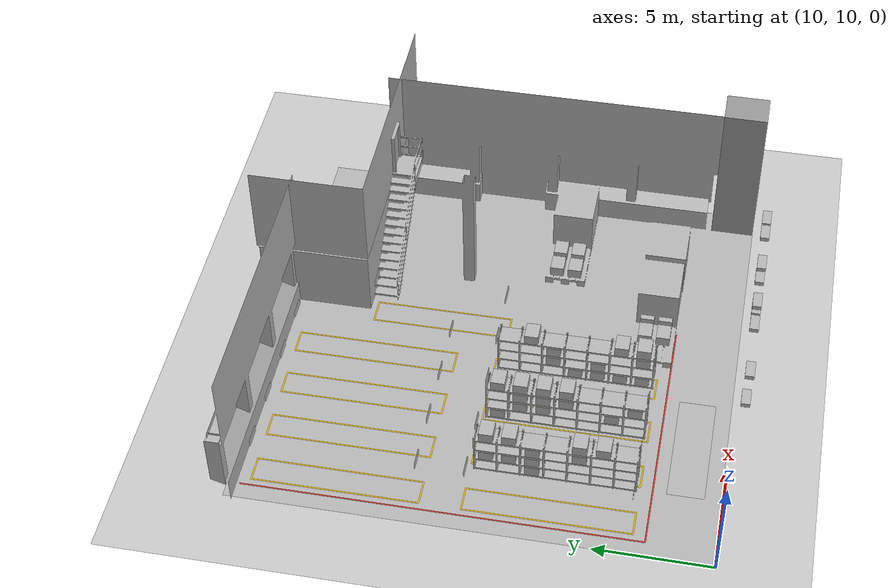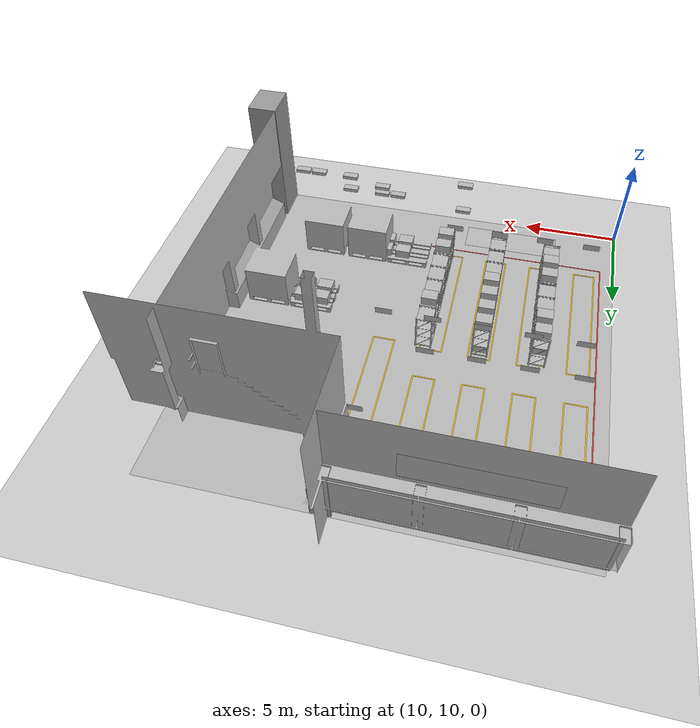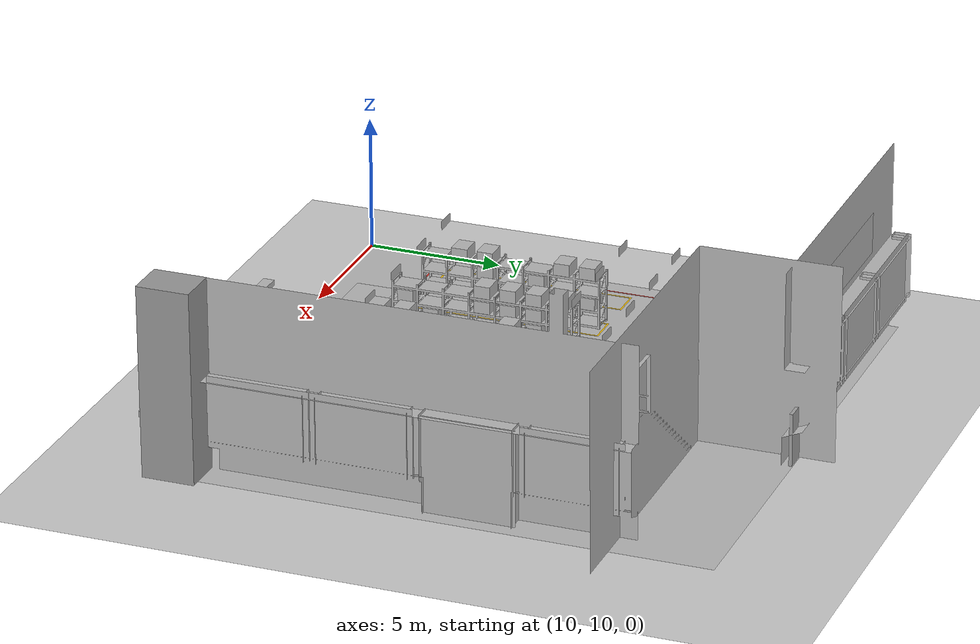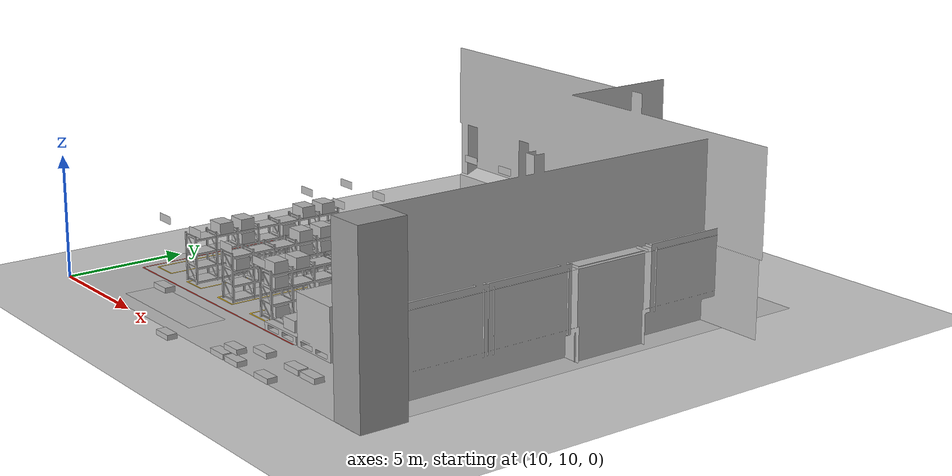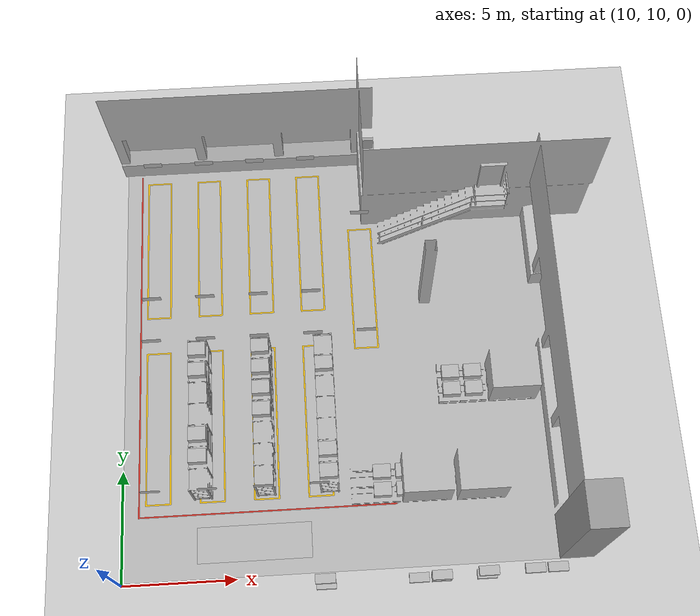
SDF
<sdf version="1.6">
 <world name="default">
  <model name="ground_plane">
   <static>1</static>
   <link name="link">
    <collision name="collision">
     <geometry><plane><normal>0 0 1</normal><size>100 100</size></plane></geometry>
     <surface><friction><ode><mu>100</mu><mu2>50</mu2></ode></friction></surface>
    </collision>
    <visual name="visual">
     <cast_shadows>0</cast_shadows>
     <geometry><plane><normal>0 0 1</normal><size>100 100</size></plane></geometry>
     <material>
      <script><uri>file://media/materials/scripts/gazebo.material</uri><name>Gazebo/Grey</name></script>
     </material>
    </visual>
   </link>
  </model>
  <model name="box_B_121">
   <pose>28.559 9.5573 1.552 0 0 1.5708</pose>
   <link name="link">
    <inertial>
     <mass>4.0</mass>
     <inertia><ixx>0.25417</ixx><iyy>0.06667</iyy><izz>0.29417</izz><ixy>0</ixy><ixz>0</ixz><iyz>0</iyz></inertia>
    </inertial>
    <collision name="collision">
     <geometry><box><size>0.4 0.85 0.2</size></box></geometry>
     <surface><friction><ode><mu>1.0</mu><mu2>1.0</mu2></ode></friction></surface>
    </collision>
    <visual name="visual">
     <cast_shadows>0</cast_shadows>
     <geometry><box><size>0.4 0.85 0.2</size></box></geometry>
     <material>
      <script>
       <uri>model://labeled_boxes/materials/scripts</uri>
       <uri>model://labeled_boxes/materials/textures</uri>
       <name>LabeledBox/B-121</name>
      </script>
     </material>
    </visual>
   </link>
  </model>
  <model name="box_B_122">
   <pose>27.605 9.5573 1.552 0 0 1.5708</pose>
   <link name="link">
    <inertial>
     <mass>4.0</mass>
     <inertia><ixx>0.25417</ixx><iyy>0.06667</iyy><izz>0.29417</izz><ixy>0</ixy><ixz>0</ixz><iyz>0</iyz></inertia>
    </inertial>
    <collision name="collision">
     <geometry><box><size>0.4 0.85 0.2</size></box></geometry>
     <surface><friction><ode><mu>1.0</mu><mu2>1.0</mu2></ode></friction></surface>
    </collision>
    <visual name="visual">
     <cast_shadows>0</cast_shadows>
     <geometry><box><size>0.4 0.85 0.2</size></box></geometry>
     <material>
      <script>
       <uri>model://labeled_boxes/materials/scripts</uri>
       <uri>model://labeled_boxes/materials/textures</uri>
       <name>LabeledBox/B-122</name>
      </script>
     </material>
    </visual>
   </link>
  </model>
  <model name="box_B_125">
   <pose>25.662 9.5573 0.652 0 0 1.5708</pose>
   <link name="link">
    <inertial>
     <mass>4.0</mass>
     <inertia><ixx>0.25417</ixx><iyy>0.06667</iyy><izz>0.29417</izz><ixy>0</ixy><ixz>0</ixz><iyz>0</iyz></inertia>
    </inertial>
    <collision name="collision">
     <geometry><box><size>0.4 0.85 0.2</size></box></geometry>
     <surface><friction><ode><mu>1.0</mu><mu2>1.0</mu2></ode></friction></surface>
    </collision>
    <visual name="visual">
     <cast_shadows>0</cast_shadows>
     <geometry><box><size>0.4 0.85 0.2</size></box></geometry>
     <material>
      <script>
       <uri>model://labeled_boxes/materials/scripts</uri>
       <uri>model://labeled_boxes/materials/textures</uri>
       <name>LabeledBox/B-125</name>
      </script>
     </material>
    </visual>
   </link>
  </model>
  <model name="box_B_126">
   <pose>25.662 9.5573 1.552 0 0 1.5708</pose>
   <link name="link">
    <inertial>
     <mass>4.0</mass>
     <inertia><ixx>0.25417</ixx><iyy>0.06667</iyy><izz>0.29417</izz><ixy>0</ixy><ixz>0</ixz><iyz>0</iyz></inertia>
    </inertial>
    <collision name="collision">
     <geometry><box><size>0.4 0.85 0.2</size></box></geometry>
     <surface><friction><ode><mu>1.0</mu><mu2>1.0</mu2></ode></friction></surface>
    </collision>
    <visual name="visual">
     <cast_shadows>0</cast_shadows>
     <geometry><box><size>0.4 0.85 0.2</size></box></geometry>
     <material>
      <script>
       <uri>model://labeled_boxes/materials/scripts</uri>
       <uri>model://labeled_boxes/materials/textures</uri>
       <name>LabeledBox/B-126</name>
      </script>
     </material>
    </visual>
   </link>
  </model>
  <model name="box_B_132">
   <pose>23.72 9.5573 0.652 0 0 1.5708</pose>
   <link name="link">
    <inertial>
     <mass>4.0</mass>
     <inertia><ixx>0.25417</ixx><iyy>0.06667</iyy><izz>0.29417</izz><ixy>0</ixy><ixz>0</ixz><iyz>0</iyz></inertia>
    </inertial>
    <collision name="collision">
     <geometry><box><size>0.4 0.85 0.2</size></box></geometry>
     <surface><friction><ode><mu>1.0</mu><mu2>1.0</mu2></ode></friction></surface>
    </collision>
    <visual name="visual">
     <cast_shadows>0</cast_shadows>
     <geometry><box><size>0.4 0.85 0.2</size></box></geometry>
     <material>
      <script>
       <uri>model://labeled_boxes/materials/scripts</uri>
       <uri>model://labeled_boxes/materials/textures</uri>
       <name>LabeledBox/B-132</name>
      </script>
     </material>
    </visual>
   </link>
  </model>
  <model name="box_B_134">
   <pose>23.72 9.5573 1.102 0 0 1.5708</pose>
   <link name="link">
    <inertial>
     <mass>4.0</mass>
     <inertia><ixx>0.25417</ixx><iyy>0.06667</iyy><izz>0.29417</izz><ixy>0</ixy><ixz>0</ixz><iyz>0</iyz></inertia>
    </inertial>
    <collision name="collision">
     <geometry><box><size>0.4 0.85 0.2</size></box></geometry>
     <surface><friction><ode><mu>1.0</mu><mu2>1.0</mu2></ode></friction></surface>
    </collision>
    <visual name="visual">
     <cast_shadows>0</cast_shadows>
     <geometry><box><size>0.4 0.85 0.2</size></box></geometry>
     <material>
      <script>
       <uri>model://labeled_boxes/materials/scripts</uri>
       <uri>model://labeled_boxes/materials/textures</uri>
       <name>LabeledBox/B-134</name>
      </script>
     </material>
    </visual>
   </link>
  </model>
  <model name="box_B_136">
   <pose>22.766 9.5573 0.652 0 0 1.5708</pose>
   <link name="link">
    <inertial>
     <mass>4.0</mass>
     <inertia><ixx>0.25417</ixx><iyy>0.06667</iyy><izz>0.29417</izz><ixy>0</ixy><ixz>0</ixz><iyz>0</iyz></inertia>
    </inertial>
    <collision name="collision">
     <geometry><box><size>0.4 0.85 0.2</size></box></geometry>
     <surface><friction><ode><mu>1.0</mu><mu2>1.0</mu2></ode></friction></surface>
    </collision>
    <visual name="visual">
     <cast_shadows>0</cast_shadows>
     <geometry><box><size>0.4 0.85 0.2</size></box></geometry>
     <material>
      <script>
       <uri>model://labeled_boxes/materials/scripts</uri>
       <uri>model://labeled_boxes/materials/textures</uri>
       <name>LabeledBox/B-136</name>
      </script>
     </material>
    </visual>
   </link>
  </model>
  <model name="box_B_137">
   <pose>18.805 9.5573 0.202 0 0 1.5708</pose>
   <link name="link">
    <inertial>
     <mass>4.0</mass>
     <inertia><ixx>0.25417</ixx><iyy>0.06667</iyy><izz>0.29417</izz><ixy>0</ixy><ixz>0</ixz><iyz>0</iyz></inertia>
    </inertial>
    <collision name="collision">
     <geometry><box><size>0.4 0.85 0.2</size></box></geometry>
     <surface><friction><ode><mu>1.0</mu><mu2>1.0</mu2></ode></friction></surface>
    </collision>
    <visual name="visual">
     <cast_shadows>0</cast_shadows>
     <geometry><box><size>0.4 0.85 0.2</size></box></geometry>
     <material>
      <script>
       <uri>model://labeled_boxes/materials/scripts</uri>
       <uri>model://labeled_boxes/materials/textures</uri>
       <name>LabeledBox/B-137</name>
      </script>
     </material>
    </visual>
   </link>
  </model>
  <model name="box_B_138">
   <pose>18.805 9.5573 2.002 0 0 1.5708</pose>
   <link name="link">
    <inertial>
     <mass>4.0</mass>
     <inertia><ixx>0.25417</ixx><iyy>0.06667</iyy><izz>0.29417</izz><ixy>0</ixy><ixz>0</ixz><iyz>0</iyz></inertia>
    </inertial>
    <collision name="collision">
     <geometry><box><size>0.4 0.85 0.2</size></box></geometry>
     <surface><friction><ode><mu>1.0</mu><mu2>1.0</mu2></ode></friction></surface>
    </collision>
    <visual name="visual">
     <cast_shadows>0</cast_shadows>
     <geometry><box><size>0.4 0.85 0.2</size></box></geometry>
     <material>
      <script>
       <uri>model://labeled_boxes/materials/scripts</uri>
       <uri>model://labeled_boxes/materials/textures</uri>
       <name>LabeledBox/B-138</name>
      </script>
     </material>
    </visual>
   </link>
  </model>
  <include>
   <name>zone_C_layout</name>
   <uri>model://zone_c_layout</uri>
   <pose>20.062 20.155 0 0 0 3.1416</pose>
  </include>
  <include>
   <name>rack_C2_1</name>
   <uri>model://warehouse_rack_4lvl_7bay</uri>
   <pose>19.162 16.955 0 0 0 3.1416</pose>
  </include>
  <model name="box_C_025">
   <pose>19.162 18.898 2.067 0 0 3.1416</pose>
   <link name="link">
    <inertial>
     <mass>8.0</mass>
     <inertia><ixx>0.37500</ixx><iyy>0.54060</iyy><izz>0.64560</izz><ixy>0</ixy><ixz>0</ixz><iyz>0</iyz></inertia>
    </inertial>
    <collision name="collision">
     <geometry><box><size>0.78 0.6 0.45</size></box></geometry>
     <surface><friction><ode><mu>1.0</mu><mu2>1.0</mu2></ode></friction></surface>
    </collision>
    <visual name="visual">
     <cast_shadows>0</cast_shadows>
     <geometry><box><size>0.78 0.6 0.45</size></box></geometry>
     <material>
      <script>
       <uri>model://labeled_boxes/materials/scripts</uri>
       <uri>model://labeled_boxes/materials/textures</uri>
       <name>LabeledBox/C-025</name>
      </script>
     </material>
    </visual>
   </link>
  </model>
  <model name="box_C_026">
   <pose>19.162 17.926 0.907 0 0 3.1416</pose>
   <link name="link">
    <inertial>
     <mass>8.0</mass>
     <inertia><ixx>0.37500</ixx><iyy>0.54060</iyy><izz>0.64560</izz><ixy>0</ixy><ixz>0</ixz><iyz>0</iyz></inertia>
    </inertial>
    <collision name="collision">
     <geometry><box><size>0.78 0.6 0.45</size></box></geometry>
     <surface><friction><ode><mu>1.0</mu><mu2>1.0</mu2></ode></friction></surface>
    </collision>
    <visual name="visual">
     <cast_shadows>0</cast_shadows>
     <geometry><box><size>0.78 0.6 0.45</size></box></geometry>
     <material>
      <script>
       <uri>model://labeled_boxes/materials/scripts</uri>
       <uri>model://labeled_boxes/materials/textures</uri>
       <name>LabeledBox/C-026</name>
      </script>
     </material>
    </visual>
   </link>
  </model>
  <model name="box_C_027">
   <pose>19.162 17.926 1.487 0 0 3.1416</pose>
   <link name="link">
    <inertial>
     <mass>8.0</mass>
     <inertia><ixx>0.37500</ixx><iyy>0.54060</iyy><izz>0.64560</izz><ixy>0</ixy><ixz>0</ixz><iyz>0</iyz></inertia>
    </inertial>
    <collision name="collision">
     <geometry><box><size>0.78 0.6 0.45</size></box></geometry>
     <surface><friction><ode><mu>1.0</mu><mu2>1.0</mu2></ode></friction></surface>
    </collision>
    <visual name="visual">
     <cast_shadows>0</cast_shadows>
     <geometry><box><size>0.78 0.6 0.45</size></box></geometry>
     <material>
      <script>
       <uri>model://labeled_boxes/materials/scripts</uri>
       <uri>model://labeled_boxes/materials/textures</uri>
       <name>LabeledBox/C-027</name>
      </script>
     </material>
    </visual>
   </link>
  </model>
  <model name="box_C_028">
   <pose>19.162 16.955 0.327 0 0 3.1416</pose>
   <link name="link">
    <inertial>
     <mass>8.0</mass>
     <inertia><ixx>0.37500</ixx><iyy>0.54060</iyy><izz>0.64560</izz><ixy>0</ixy><ixz>0</ixz><iyz>0</iyz></inertia>
    </inertial>
    <collision name="collision">
     <geometry><box><size>0.78 0.6 0.45</size></box></geometry>
     <surface><friction><ode><mu>1.0</mu><mu2>1.0</mu2></ode></friction></surface>
    </collision>
    <visual name="visual">
     <cast_shadows>0</cast_shadows>
     <geometry><box><size>0.78 0.6 0.45</size></box></geometry>
     <material>
      <script>
       <uri>model://labeled_boxes/materials/scripts</uri>
       <uri>model://labeled_boxes/materials/textures</uri>
       <name>LabeledBox/C-028</name>
      </script>
     </material>
    </visual>
   </link>
  </model>
  <model name="box_C_029">
   <pose>19.162 15.983 0.327 0 0 3.1416</pose>
   <link name="link">
    <inertial>
     <mass>8.0</mass>
     <inertia><ixx>0.37500</ixx><iyy>0.54060</iyy><izz>0.64560</izz><ixy>0</ixy><ixz>0</ixz><iyz>0</iyz></inertia>
    </inertial>
    <collision name="collision">
     <geometry><box><size>0.78 0.6 0.45</size></box></geometry>
     <surface><friction><ode><mu>1.0</mu><mu2>1.0</mu2></ode></friction></surface>
    </collision>
    <visual name="visual">
     <cast_shadows>0</cast_shadows>
     <geometry><box><size>0.78 0.6 0.45</size></box></geometry>
     <material>
      <script>
       <uri>model://labeled_boxes/materials/scripts</uri>
       <uri>model://labeled_boxes/materials/textures</uri>
       <name>LabeledBox/C-029</name>
      </script>
     </material>
    </visual>
   </link>
  </model>
  <model name="box_C_030">
   <pose>19.162 15.983 0.907 0 0 3.1416</pose>
   <link name="link">
    <inertial>
     <mass>8.0</mass>
     <inertia><ixx>0.37500</ixx><iyy>0.54060</iyy><izz>0.64560</izz><ixy>0</ixy><ixz>0</ixz><iyz>0</iyz></inertia>
    </inertial>
    <collision name="collision">
     <geometry><box><size>0.78 0.6 0.45</size></box></geometry>
     <surface><friction><ode><mu>1.0</mu><mu2>1.0</mu2></ode></friction></surface>
    </collision>
    <visual name="visual">
     <cast_shadows>0</cast_shadows>
     <geometry><box><size>0.78 0.6 0.45</size></box></geometry>
     <material>
      <script>
       <uri>model://labeled_boxes/materials/scripts</uri>
       <uri>model://labeled_boxes/materials/textures</uri>
       <name>LabeledBox/C-030</name>
      </script>
     </material>
    </visual>
   </link>
  </model>
  <model name="box_C_031">
   <pose>19.162 15.012 0.327 0 0 3.1416</pose>
   <link name="link">
    <inertial>
     <mass>8.0</mass>
     <inertia><ixx>0.37500</ixx><iyy>0.54060</iyy><izz>0.64560</izz><ixy>0</ixy><ixz>0</ixz><iyz>0</iyz></inertia>
    </inertial>
    <collision name="collision">
     <geometry><box><size>0.78 0.6 0.45</size></box></geometry>
     <surface><friction><ode><mu>1.0</mu><mu2>1.0</mu2></ode></friction></surface>
    </collision>
    <visual name="visual">
     <cast_shadows>0</cast_shadows>
     <geometry><box><size>0.78 0.6 0.45</size></box></geometry>
     <material>
      <script>
       <uri>model://labeled_boxes/materials/scripts</uri>
       <uri>model://labeled_boxes/materials/textures</uri>
       <name>LabeledBox/C-031</name>
      </script>
     </material>
    </visual>
   </link>
  </model>
  <model name="box_C_032">
   <pose>19.162 15.012 2.067 0 0 3.1416</pose>
   <link name="link">
    <inertial>
     <mass>8.0</mass>
     <inertia><ixx>0.37500</ixx><iyy>0.54060</iyy><izz>0.64560</izz><ixy>0</ixy><ixz>0</ixz><iyz>0</iyz></inertia>
    </inertial>
    <collision name="collision">
     <geometry><box><size>0.78 0.6 0.45</size></box></geometry>
     <surface><friction><ode><mu>1.0</mu><mu2>1.0</mu2></ode></friction></surface>
    </collision>
    <visual name="visual">
     <cast_shadows>0</cast_shadows>
     <geometry><box><size>0.78 0.6 0.45</size></box></geometry>
     <material>
      <script>
       <uri>model://labeled_boxes/materials/scripts</uri>
       <uri>model://labeled_boxes/materials/textures</uri>
       <name>LabeledBox/C-032</name>
      </script>
     </material>
    </visual>
   </link>
  </model>
  <model name="box_C_033">
   <pose>19.162 14.058 0.327 0 0 3.1416</pose>
   <link name="link">
    <inertial>
     <mass>8.0</mass>
     <inertia><ixx>0.37500</ixx><iyy>0.54060</iyy><izz>0.64560</izz><ixy>0</ixy><ixz>0</ixz><iyz>0</iyz></inertia>
    </inertial>
    <collision name="collision">
     <geometry><box><size>0.78 0.6 0.45</size></box></geometry>
     <surface><friction><ode><mu>1.0</mu><mu2>1.0</mu2></ode></friction></surface>
    </collision>
    <visual name="visual">
     <cast_shadows>0</cast_shadows>
     <geometry><box><size>0.78 0.6 0.45</size></box></geometry>
     <material>
      <script>
       <uri>model://labeled_boxes/materials/scripts</uri>
       <uri>model://labeled_boxes/materials/textures</uri>
       <name>LabeledBox/C-033</name>
      </script>
     </material>
    </visual>
   </link>
  </model>
  <model name="box_C_034">
   <pose>19.162 14.058 1.487 0 0 3.1416</pose>
   <link name="link">
    <inertial>
     <mass>8.0</mass>
     <inertia><ixx>0.37500</ixx><iyy>0.54060</iyy><izz>0.64560</izz><ixy>0</ixy><ixz>0</ixz><iyz>0</iyz></inertia>
    </inertial>
    <collision name="collision">
     <geometry><box><size>0.78 0.6 0.45</size></box></geometry>
     <surface><friction><ode><mu>1.0</mu><mu2>1.0</mu2></ode></friction></surface>
    </collision>
    <visual name="visual">
     <cast_shadows>0</cast_shadows>
     <geometry><box><size>0.78 0.6 0.45</size></box></geometry>
     <material>
      <script>
       <uri>model://labeled_boxes/materials/scripts</uri>
       <uri>model://labeled_boxes/materials/textures</uri>
       <name>LabeledBox/C-034</name>
      </script>
     </material>
    </visual>
   </link>
  </model>
  <model name="box_C_035">
   <pose>19.162 14.058 2.067 0 0 3.1416</pose>
   <link name="link">
    <inertial>
     <mass>8.0</mass>
     <inertia><ixx>0.37500</ixx><iyy>0.54060</iyy><izz>0.64560</izz><ixy>0</ixy><ixz>0</ixz><iyz>0</iyz></inertia>
    </inertial>
    <collision name="collision">
     <geometry><box><size>0.78 0.6 0.45</size></box></geometry>
     <surface><friction><ode><mu>1.0</mu><mu2>1.0</mu2></ode></friction></surface>
    </collision>
    <visual name="visual">
     <cast_shadows>0</cast_shadows>
     <geometry><box><size>0.78 0.6 0.45</size></box></geometry>
     <material>
      <script>
       <uri>model://labeled_boxes/materials/scripts</uri>
       <uri>model://labeled_boxes/materials/textures</uri>
       <name>LabeledBox/C-035</name>
      </script>
     </material>
    </visual>
   </link>
  </model>
  <include>
   <name>rack_C3_1</name>
   <uri>model://warehouse_rack_4lvl_7bay</uri>
   <pose>16.362 16.955 0 0 0 3.1416</pose>
  </include>
  <model name="box_C_046">
   <pose>16.362 19.852 0.327 0 0 3.1416</pose>
   <link name="link">
    <inertial>
     <mass>8.0</mass>
     <inertia><ixx>0.37500</ixx><iyy>0.54060</iyy><izz>0.64560</izz><ixy>0</ixy><ixz>0</ixz><iyz>0</iyz></inertia>
    </inertial>
    <collision name="collision">
     <geometry><box><size>0.78 0.6 0.45</size></box></geometry>
     <surface><friction><ode><mu>1.0</mu><mu2>1.0</mu2></ode></friction></surface>
    </collision>
    <visual name="visual">
     <cast_shadows>0</cast_shadows>
     <geometry><box><size>0.78 0.6 0.45</size></box></geometry>
     <material>
      <script>
       <uri>model://labeled_boxes/materials/scripts</uri>
       <uri>model://labeled_boxes/materials/textures</uri>
       <name>LabeledBox/C-046</name>
      </script>
     </material>
    </visual>
   </link>
  </model>
  <model name="box_C_047">
   <pose>16.362 19.852 2.067 0 0 3.1416</pose>
   <link name="link">
    <inertial>
     <mass>8.0</mass>
     <inertia><ixx>0.37500</ixx><iyy>0.54060</iyy><izz>0.64560</izz><ixy>0</ixy><ixz>0</ixz><iyz>0</iyz></inertia>
    </inertial>
    <collision name="collision">
     <geometry><box><size>0.78 0.6 0.45</size></box></geometry>
     <surface><friction><ode><mu>1.0</mu><mu2>1.0</mu2></ode></friction></surface>
    </collision>
    <visual name="visual">
     <cast_shadows>0</cast_shadows>
     <geometry><box><size>0.78 0.6 0.45</size></box></geometry>
     <material>
      <script>
       <uri>model://labeled_boxes/materials/scripts</uri>
       <uri>model://labeled_boxes/materials/textures</uri>
       <name>LabeledBox/C-047</name>
      </script>
     </material>
    </visual>
   </link>
  </model>
  <model name="box_C_048">
   <pose>16.362 18.898 0.907 0 0 3.1416</pose>
   <link name="link">
    <inertial>
     <mass>8.0</mass>
     <inertia><ixx>0.37500</ixx><iyy>0.54060</iyy><izz>0.64560</izz><ixy>0</ixy><ixz>0</ixz><iyz>0</iyz></inertia>
    </inertial>
    <collision name="collision">
     <geometry><box><size>0.78 0.6 0.45</size></box></geometry>
     <surface><friction><ode><mu>1.0</mu><mu2>1.0</mu2></ode></friction></surface>
    </collision>
    <visual name="visual">
     <cast_shadows>0</cast_shadows>
     <geometry><box><size>0.78 0.6 0.45</size></box></geometry>
     <material>
      <script>
       <uri>model://labeled_boxes/materials/scripts</uri>
       <uri>model://labeled_boxes/materials/textures</uri>
       <name>LabeledBox/C-048</name>
      </script>
     </material>
    </visual>
   </link>
  </model>
  <model name="box_C_049">
   <pose>16.362 18.898 1.487 0 0 3.1416</pose>
   <link name="link">
    <inertial>
     <mass>8.0</mass>
     <inertia><ixx>0.37500</ixx><iyy>0.54060</iyy><izz>0.64560</izz><ixy>0</ixy><ixz>0</ixz><iyz>0</iyz></inertia>
    </inertial>
    <collision name="collision">
     <geometry><box><size>0.78 0.6 0.45</size></box></geometry>
     <surface><friction><ode><mu>1.0</mu><mu2>1.0</mu2></ode></friction></surface>
    </collision>
    <visual name="visual">
     <cast_shadows>0</cast_shadows>
     <geometry><box><size>0.78 0.6 0.45</size></box></geometry>
     <material>
      <script>
       <uri>model://labeled_boxes/materials/scripts</uri>
       <uri>model://labeled_boxes/materials/textures</uri>
       <name>LabeledBox/C-049</name>
      </script>
     </material>
    </visual>
   </link>
  </model>
  <model name="box_C_050">
   <pose>16.362 18.898 2.067 0 0 3.1416</pose>
   <link name="link">
    <inertial>
     <mass>8.0</mass>
     <inertia><ixx>0.37500</ixx><iyy>0.54060</iyy><izz>0.64560</izz><ixy>0</ixy><ixz>0</ixz><iyz>0</iyz></inertia>
    </inertial>
    <collision name="collision">
     <geometry><box><size>0.78 0.6 0.45</size></box></geometry>
     <surface><friction><ode><mu>1.0</mu><mu2>1.0</mu2></ode></friction></surface>
    </collision>
    <visual name="visual">
     <cast_shadows>0</cast_shadows>
     <geometry><box><size>0.78 0.6 0.45</size></box></geometry>
     <material>
      <script>
       <uri>model://labeled_boxes/materials/scripts</uri>
       <uri>model://labeled_boxes/materials/textures</uri>
       <name>LabeledBox/C-050</name>
      </script>
     </material>
    </visual>
   </link>
  </model>
  <model name="box_C_051">
   <pose>16.362 17.926 0.907 0 0 3.1416</pose>
   <link name="link">
    <inertial>
     <mass>8.0</mass>
     <inertia><ixx>0.37500</ixx><iyy>0.54060</iyy><izz>0.64560</izz><ixy>0</ixy><ixz>0</ixz><iyz>0</iyz></inertia>
    </inertial>
    <collision name="collision">
     <geometry><box><size>0.78 0.6 0.45</size></box></geometry>
     <surface><friction><ode><mu>1.0</mu><mu2>1.0</mu2></ode></friction></surface>
    </collision>
    <visual name="visual">
     <cast_shadows>0</cast_shadows>
     <geometry><box><size>0.78 0.6 0.45</size></box></geometry>
     <material>
      <script>
       <uri>model://labeled_boxes/materials/scripts</uri>
       <uri>model://labeled_boxes/materials/textures</uri>
       <name>LabeledBox/C-051</name>
      </script>
     </material>
    </visual>
   </link>
  </model>
  <model name="box_C_052">
   <pose>16.362 17.926 1.487 0 0 3.1416</pose>
   <link name="link">
    <inertial>
     <mass>8.0</mass>
     <inertia><ixx>0.37500</ixx><iyy>0.54060</iyy><izz>0.64560</izz><ixy>0</ixy><ixz>0</ixz><iyz>0</iyz></inertia>
    </inertial>
    <collision name="collision">
     <geometry><box><size>0.78 0.6 0.45</size></box></geometry>
     <surface><friction><ode><mu>1.0</mu><mu2>1.0</mu2></ode></friction></surface>
    </collision>
    <visual name="visual">
     <cast_shadows>0</cast_shadows>
     <geometry><box><size>0.78 0.6 0.45</size></box></geometry>
     <material>
      <script>
       <uri>model://labeled_boxes/materials/scripts</uri>
       <uri>model://labeled_boxes/materials/textures</uri>
       <name>LabeledBox/C-052</name>
      </script>
     </material>
    </visual>
   </link>
  </model>
  <model name="box_C_053">
   <pose>16.362 17.926 2.067 0 0 3.1416</pose>
   <link name="link">
    <inertial>
     <mass>8.0</mass>
     <inertia><ixx>0.37500</ixx><iyy>0.54060</iyy><izz>0.64560</izz><ixy>0</ixy><ixz>0</ixz><iyz>0</iyz></inertia>
    </inertial>
    <collision name="collision">
     <geometry><box><size>0.78 0.6 0.45</size></box></geometry>
     <surface><friction><ode><mu>1.0</mu><mu2>1.0</mu2></ode></friction></surface>
    </collision>
    <visual name="visual">
     <cast_shadows>0</cast_shadows>
     <geometry><box><size>0.78 0.6 0.45</size></box></geometry>
     <material>
      <script>
       <uri>model://labeled_boxes/materials/scripts</uri>
       <uri>model://labeled_boxes/materials/textures</uri>
       <name>LabeledBox/C-053</name>
      </script>
     </material>
    </visual>
   </link>
  </model>
  <model name="box_C_054">
   <pose>16.362 16.955 1.487 0 0 3.1416</pose>
   <link name="link">
    <inertial>
     <mass>8.0</mass>
     <inertia><ixx>0.37500</ixx><iyy>0.54060</iyy><izz>0.64560</izz><ixy>0</ixy><ixz>0</ixz><iyz>0</iyz></inertia>
    </inertial>
    <collision name="collision">
     <geometry><box><size>0.78 0.6 0.45</size></box></geometry>
     <surface><friction><ode><mu>1.0</mu><mu2>1.0</mu2></ode></friction></surface>
    </collision>
    <visual name="visual">
     <cast_shadows>0</cast_shadows>
     <geometry><box><size>0.78 0.6 0.45</size></box></geometry>
     <material>
      <script>
       <uri>model://labeled_boxes/materials/scripts</uri>
       <uri>model://labeled_boxes/materials/textures</uri>
       <name>LabeledBox/C-054</name>
      </script>
     </material>
    </visual>
   </link>
  </model>
  <model name="box_C_055">
   <pose>16.362 16.955 2.067 0 0 3.1416</pose>
   <link name="link">
    <inertial>
     <mass>8.0</mass>
     <inertia><ixx>0.37500</ixx><iyy>0.54060</iyy><izz>0.64560</izz><ixy>0</ixy><ixz>0</ixz><iyz>0</iyz></inertia>
    </inertial>
    <collision name="collision">
     <geometry><box><size>0.78 0.6 0.45</size></box></geometry>
     <surface><friction><ode><mu>1.0</mu><mu2>1.0</mu2></ode></friction></surface>
    </collision>
    <visual name="visual">
     <cast_shadows>0</cast_shadows>
     <geometry><box><size>0.78 0.6 0.45</size></box></geometry>
     <material>
      <script>
       <uri>model://labeled_boxes/materials/scripts</uri>
       <uri>model://labeled_boxes/materials/textures</uri>
       <name>LabeledBox/C-055</name>
      </script>
     </material>
    </visual>
   </link>
  </model>
  <model name="box_C_056">
   <pose>16.362 15.012 0.907 0 0 3.1416</pose>
   <link name="link">
    <inertial>
     <mass>8.0</mass>
     <inertia><ixx>0.37500</ixx><iyy>0.54060</iyy><izz>0.64560</izz><ixy>0</ixy><ixz>0</ixz><iyz>0</iyz></inertia>
    </inertial>
    <collision name="collision">
     <geometry><box><size>0.78 0.6 0.45</size></box></geometry>
     <surface><friction><ode><mu>1.0</mu><mu2>1.0</mu2></ode></friction></surface>
    </collision>
    <visual name="visual">
     <cast_shadows>0</cast_shadows>
     <geometry><box><size>0.78 0.6 0.45</size></box></geometry>
     <material>
      <script>
       <uri>model://labeled_boxes/materials/scripts</uri>
       <uri>model://labeled_boxes/materials/textures</uri>
       <name>LabeledBox/C-056</name>
      </script>
     </material>
    </visual>
   </link>
  </model>
  <model name="box_C_057">
   <pose>16.362 14.058 1.487 0 0 3.1416</pose>
   <link name="link">
    <inertial>
     <mass>8.0</mass>
     <inertia><ixx>0.37500</ixx><iyy>0.54060</iyy><izz>0.64560</izz><ixy>0</ixy><ixz>0</ixz><iyz>0</iyz></inertia>
    </inertial>
    <collision name="collision">
     <geometry><box><size>0.78 0.6 0.45</size></box></geometry>
     <surface><friction><ode><mu>1.0</mu><mu2>1.0</mu2></ode></friction></surface>
    </collision>
    <visual name="visual">
     <cast_shadows>0</cast_shadows>
     <geometry><box><size>0.78 0.6 0.45</size></box></geometry>
     <material>
      <script>
       <uri>model://labeled_boxes/materials/scripts</uri>
       <uri>model://labeled_boxes/materials/textures</uri>
       <name>LabeledBox/C-057</name>
      </script>
     </material>
    </visual>
   </link>
  </model>
  <include>
   <name>rack_C4_1</name>
   <uri>model://warehouse_rack_4lvl_7bay</uri>
   <pose>13.562 16.955 0 0 0 3.1416</pose>
  </include>
  <model name="box_C_071">
   <pose>13.562 19.852 0.907 0 0 3.1416</pose>
   <link name="link">
    <inertial>
     <mass>8.0</mass>
     <inertia><ixx>0.37500</ixx><iyy>0.54060</iyy><izz>0.64560</izz><ixy>0</ixy><ixz>0</ixz><iyz>0</iyz></inertia>
    </inertial>
    <collision name="collision">
     <geometry><box><size>0.78 0.6 0.45</size></box></geometry>
     <surface><friction><ode><mu>1.0</mu><mu2>1.0</mu2></ode></friction></surface>
    </collision>
    <visual name="visual">
     <cast_shadows>0</cast_shadows>
     <geometry><box><size>0.78 0.6 0.45</size></box></geometry>
     <material>
      <script>
       <uri>model://labeled_boxes/materials/scripts</uri>
       <uri>model://labeled_boxes/materials/textures</uri>
       <name>LabeledBox/C-071</name>
      </script>
     </material>
    </visual>
   </link>
  </model>
  <model name="box_C_072">
   <pose>13.562 19.852 2.067 0 0 3.1416</pose>
   <link name="link">
    <inertial>
     <mass>8.0</mass>
     <inertia><ixx>0.37500</ixx><iyy>0.54060</iyy><izz>0.64560</izz><ixy>0</ixy><ixz>0</ixz><iyz>0</iyz></inertia>
    </inertial>
    <collision name="collision">
     <geometry><box><size>0.78 0.6 0.45</size></box></geometry>
     <surface><friction><ode><mu>1.0</mu><mu2>1.0</mu2></ode></friction></surface>
    </collision>
    <visual name="visual">
     <cast_shadows>0</cast_shadows>
     <geometry><box><size>0.78 0.6 0.45</size></box></geometry>
     <material>
      <script>
       <uri>model://labeled_boxes/materials/scripts</uri>
       <uri>model://labeled_boxes/materials/textures</uri>
       <name>LabeledBox/C-072</name>
      </script>
     </material>
    </visual>
   </link>
  </model>
  <model name="box_C_073">
   <pose>13.562 18.898 0.907 0 0 3.1416</pose>
   <link name="link">
    <inertial>
     <mass>8.0</mass>
     <inertia><ixx>0.37500</ixx><iyy>0.54060</iyy><izz>0.64560</izz><ixy>0</ixy><ixz>0</ixz><iyz>0</iyz></inertia>
    </inertial>
    <collision name="collision">
     <geometry><box><size>0.78 0.6 0.45</size></box></geometry>
     <surface><friction><ode><mu>1.0</mu><mu2>1.0</mu2></ode></friction></surface>
    </collision>
    <visual name="visual">
     <cast_shadows>0</cast_shadows>
     <geometry><box><size>0.78 0.6 0.45</size></box></geometry>
     <material>
      <script>
       <uri>model://labeled_boxes/materials/scripts</uri>
       <uri>model://labeled_boxes/materials/textures</uri>
       <name>LabeledBox/C-073</name>
      </script>
     </material>
    </visual>
   </link>
  </model>
  <model name="box_C_074">
   <pose>13.562 18.898 2.067 0 0 3.1416</pose>
   <link name="link">
    <inertial>
     <mass>8.0</mass>
     <inertia><ixx>0.37500</ixx><iyy>0.54060</iyy><izz>0.64560</izz><ixy>0</ixy><ixz>0</ixz><iyz>0</iyz></inertia>
    </inertial>
    <collision name="collision">
     <geometry><box><size>0.78 0.6 0.45</size></box></geometry>
     <surface><friction><ode><mu>1.0</mu><mu2>1.0</mu2></ode></friction></surface>
    </collision>
    <visual name="visual">
     <cast_shadows>0</cast_shadows>
     <geometry><box><size>0.78 0.6 0.45</size></box></geometry>
     <material>
      <script>
       <uri>model://labeled_boxes/materials/scripts</uri>
       <uri>model://labeled_boxes/materials/textures</uri>
       <name>LabeledBox/C-074</name>
      </script>
     </material>
    </visual>
   </link>
  </model>
  <model name="box_C_075">
   <pose>13.562 17.926 0.327 0 0 3.1416</pose>
   <link name="link">
    <inertial>
     <mass>8.0</mass>
     <inertia><ixx>0.37500</ixx><iyy>0.54060</iyy><izz>0.64560</izz><ixy>0</ixy><ixz>0</ixz><iyz>0</iyz></inertia>
    </inertial>
    <collision name="collision">
     <geometry><box><size>0.78 0.6 0.45</size></box></geometry>
     <surface><friction><ode><mu>1.0</mu><mu2>1.0</mu2></ode></friction></surface>
    </collision>
    <visual name="visual">
     <cast_shadows>0</cast_shadows>
     <geometry><box><size>0.78 0.6 0.45</size></box></geometry>
     <material>
      <script>
       <uri>model://labeled_boxes/materials/scripts</uri>
       <uri>model://labeled_boxes/materials/textures</uri>
       <name>LabeledBox/C-075</name>
      </script>
     </material>
    </visual>
   </link>
  </model>
  <model name="box_C_076">
   <pose>13.562 17.926 0.907 0 0 3.1416</pose>
   <link name="link">
    <inertial>
     <mass>8.0</mass>
     <inertia><ixx>0.37500</ixx><iyy>0.54060</iyy><izz>0.64560</izz><ixy>0</ixy><ixz>0</ixz><iyz>0</iyz></inertia>
    </inertial>
    <collision name="collision">
     <geometry><box><size>0.78 0.6 0.45</size></box></geometry>
     <surface><friction><ode><mu>1.0</mu><mu2>1.0</mu2></ode></friction></surface>
    </collision>
    <visual name="visual">
     <cast_shadows>0</cast_shadows>
     <geometry><box><size>0.78 0.6 0.45</size></box></geometry>
     <material>
      <script>
       <uri>model://labeled_boxes/materials/scripts</uri>
       <uri>model://labeled_boxes/materials/textures</uri>
       <name>LabeledBox/C-076</name>
      </script>
     </material>
    </visual>
   </link>
  </model>
  <model name="box_C_077">
   <pose>13.562 17.926 1.487 0 0 3.1416</pose>
   <link name="link">
    <inertial>
     <mass>8.0</mass>
     <inertia><ixx>0.37500</ixx><iyy>0.54060</iyy><izz>0.64560</izz><ixy>0</ixy><ixz>0</ixz><iyz>0</iyz></inertia>
    </inertial>
    <collision name="collision">
     <geometry><box><size>0.78 0.6 0.45</size></box></geometry>
     <surface><friction><ode><mu>1.0</mu><mu2>1.0</mu2></ode></friction></surface>
    </collision>
    <visual name="visual">
     <cast_shadows>0</cast_shadows>
     <geometry><box><size>0.78 0.6 0.45</size></box></geometry>
     <material>
      <script>
       <uri>model://labeled_boxes/materials/scripts</uri>
       <uri>model://labeled_boxes/materials/textures</uri>
       <name>LabeledBox/C-077</name>
      </script>
     </material>
    </visual>
   </link>
  </model>
  <model name="box_C_078">
   <pose>13.562 15.983 1.487 0 0 3.1416</pose>
   <link name="link">
    <inertial>
     <mass>8.0</mass>
     <inertia><ixx>0.37500</ixx><iyy>0.54060</iyy><izz>0.64560</izz><ixy>0</ixy><ixz>0</ixz><iyz>0</iyz></inertia>
    </inertial>
    <collision name="collision">
     <geometry><box><size>0.78 0.6 0.45</size></box></geometry>
     <surface><friction><ode><mu>1.0</mu><mu2>1.0</mu2></ode></friction></surface>
    </collision>
    <visual name="visual">
     <cast_shadows>0</cast_shadows>
     <geometry><box><size>0.78 0.6 0.45</size></box></geometry>
     <material>
      <script>
       <uri>model://labeled_boxes/materials/scripts</uri>
       <uri>model://labeled_boxes/materials/textures</uri>
       <name>LabeledBox/C-078</name>
      </script>
     </material>
    </visual>
   </link>
  </model>
  <model name="box_C_079">
   <pose>13.562 15.983 2.067 0 0 3.1416</pose>
   <link name="link">
    <inertial>
     <mass>8.0</mass>
     <inertia><ixx>0.37500</ixx><iyy>0.54060</iyy><izz>0.64560</izz><ixy>0</ixy><ixz>0</ixz><iyz>0</iyz></inertia>
    </inertial>
    <collision name="collision">
     <geometry><box><size>0.78 0.6 0.45</size></box></geometry>
     <surface><friction><ode><mu>1.0</mu><mu2>1.0</mu2></ode></friction></surface>
    </collision>
    <visual name="visual">
     <cast_shadows>0</cast_shadows>
     <geometry><box><size>0.78 0.6 0.45</size></box></geometry>
     <material>
      <script>
       <uri>model://labeled_boxes/materials/scripts</uri>
       <uri>model://labeled_boxes/materials/textures</uri>
       <name>LabeledBox/C-079</name>
      </script>
     </material>
    </visual>
   </link>
  </model>
  <model name="box_C_080">
   <pose>13.562 15.012 2.067 0 0 3.1416</pose>
   <link name="link">
    <inertial>
     <mass>8.0</mass>
     <inertia><ixx>0.37500</ixx><iyy>0.54060</iyy><izz>0.64560</izz><ixy>0</ixy><ixz>0</ixz><iyz>0</iyz></inertia>
    </inertial>
    <collision name="collision">
     <geometry><box><size>0.78 0.6 0.45</size></box></geometry>
     <surface><friction><ode><mu>1.0</mu><mu2>1.0</mu2></ode></friction></surface>
    </collision>
    <visual name="visual">
     <cast_shadows>0</cast_shadows>
     <geometry><box><size>0.78 0.6 0.45</size></box></geometry>
     <material>
      <script>
       <uri>model://labeled_boxes/materials/scripts</uri>
       <uri>model://labeled_boxes/materials/textures</uri>
       <name>LabeledBox/C-080</name>
      </script>
     </material>
    </visual>
   </link>
  </model>
  <model name="box_C_107">
   <pose>22.461 14.236 0.5542 0 0 3.1416</pose>
   <link name="link">
    <inertial>
     <mass>8.0</mass>
     <inertia><ixx>0.37500</ixx><iyy>0.54060</iyy><izz>0.64560</izz><ixy>0</ixy><ixz>0</ixz><iyz>0</iyz></inertia>
    </inertial>
    <collision name="collision">
     <geometry><box><size>0.78 0.6 0.45</size></box></geometry>
     <surface><friction><ode><mu>1.0</mu><mu2>1.0</mu2></ode></friction></surface>
    </collision>
    <visual name="visual">
     <cast_shadows>0</cast_shadows>
     <geometry><box><size>0.78 0.6 0.45</size></box></geometry>
     <material>
      <script>
       <uri>model://labeled_boxes/materials/scripts</uri>
       <uri>model://labeled_boxes/materials/textures</uri>
       <name>LabeledBox/C-107</name>
      </script>
     </material>
    </visual>
   </link>
  </model>
  <model name="box_C_108">
   <pose>22.461 13.436 0.5542 0 0 3.1416</pose>
   <link name="link">
    <inertial>
     <mass>8.0</mass>
     <inertia><ixx>0.37500</ixx><iyy>0.54060</iyy><izz>0.64560</izz><ixy>0</ixy><ixz>0</ixz><iyz>0</iyz></inertia>
    </inertial>
    <collision name="collision">
     <geometry><box><size>0.78 0.6 0.45</size></box></geometry>
     <surface><friction><ode><mu>1.0</mu><mu2>1.0</mu2></ode></friction></surface>
    </collision>
    <visual name="visual">
     <cast_shadows>0</cast_shadows>
     <geometry><box><size>0.78 0.6 0.45</size></box></geometry>
     <material>
      <script>
       <uri>model://labeled_boxes/materials/scripts</uri>
       <uri>model://labeled_boxes/materials/textures</uri>
       <name>LabeledBox/C-108</name>
      </script>
     </material>
    </visual>
   </link>
  </model>
  <model name="box_C_109">
   <pose>21.461 14.236 0.5542 0 0 3.1416</pose>
   <link name="link">
    <inertial>
     <mass>8.0</mass>
     <inertia><ixx>0.37500</ixx><iyy>0.54060</iyy><izz>0.64560</izz><ixy>0</ixy><ixz>0</ixz><iyz>0</iyz></inertia>
    </inertial>
    <collision name="collision">
     <geometry><box><size>0.78 0.6 0.45</size></box></geometry>
     <surface><friction><ode><mu>1.0</mu><mu2>1.0</mu2></ode></friction></surface>
    </collision>
    <visual name="visual">
     <cast_shadows>0</cast_shadows>
     <geometry><box><size>0.78 0.6 0.45</size></box></geometry>
     <material>
      <script>
       <uri>model://labeled_boxes/materials/scripts</uri>
       <uri>model://labeled_boxes/materials/textures</uri>
       <name>LabeledBox/C-109</name>
      </script>
     </material>
    </visual>
   </link>
  </model>
  <model name="box_C_110">
   <pose>21.461 13.436 0.5542 0 0 3.1416</pose>
   <link name="link">
    <inertial>
     <mass>8.0</mass>
     <inertia><ixx>0.37500</ixx><iyy>0.54060</iyy><izz>0.64560</izz><ixy>0</ixy><ixz>0</ixz><iyz>0</iyz></inertia>
    </inertial>
    <collision name="collision">
     <geometry><box><size>0.78 0.6 0.45</size></box></geometry>
     <surface><friction><ode><mu>1.0</mu><mu2>1.0</mu2></ode></friction></surface>
    </collision>
    <visual name="visual">
     <cast_shadows>0</cast_shadows>
     <geometry><box><size>0.78 0.6 0.45</size></box></geometry>
     <material>
      <script>
       <uri>model://labeled_boxes/materials/scripts</uri>
       <uri>model://labeled_boxes/materials/textures</uri>
       <name>LabeledBox/C-110</name>
      </script>
     </material>
    </visual>
   </link>
  </model>
  <model name="box_C_111">
   <pose>25.859 18.638 0.5542 0 0 3.1416</pose>
   <link name="link">
    <inertial>
     <mass>8.0</mass>
     <inertia><ixx>0.37500</ixx><iyy>0.54060</iyy><izz>0.64560</izz><ixy>0</ixy><ixz>0</ixz><iyz>0</iyz></inertia>
    </inertial>
    <collision name="collision">
     <geometry><box><size>0.78 0.6 0.45</size></box></geometry>
     <surface><friction><ode><mu>1.0</mu><mu2>1.0</mu2></ode></friction></surface>
    </collision>
    <visual name="visual">
     <cast_shadows>0</cast_shadows>
     <geometry><box><size>0.78 0.6 0.45</size></box></geometry>
     <material>
      <script>
       <uri>model://labeled_boxes/materials/scripts</uri>
       <uri>model://labeled_boxes/materials/textures</uri>
       <name>LabeledBox/C-111</name>
      </script>
     </material>
    </visual>
   </link>
  </model>
  <model name="box_C_112">
   <pose>25.859 17.838 0.5542 0 0 3.1416</pose>
   <link name="link">
    <inertial>
     <mass>8.0</mass>
     <inertia><ixx>0.37500</ixx><iyy>0.54060</iyy><izz>0.64560</izz><ixy>0</ixy><ixz>0</ixz><iyz>0</iyz></inertia>
    </inertial>
    <collision name="collision">
     <geometry><box><size>0.78 0.6 0.45</size></box></geometry>
     <surface><friction><ode><mu>1.0</mu><mu2>1.0</mu2></ode></friction></surface>
    </collision>
    <visual name="visual">
     <cast_shadows>0</cast_shadows>
     <geometry><box><size>0.78 0.6 0.45</size></box></geometry>
     <material>
      <script>
       <uri>model://labeled_boxes/materials/scripts</uri>
       <uri>model://labeled_boxes/materials/textures</uri>
       <name>LabeledBox/C-112</name>
      </script>
     </material>
    </visual>
   </link>
  </model>
  <model name="box_C_113">
   <pose>24.859 18.638 0.5542 0 0 3.1416</pose>
   <link name="link">
    <inertial>
     <mass>8.0</mass>
     <inertia><ixx>0.37500</ixx><iyy>0.54060</iyy><izz>0.64560</izz><ixy>0</ixy><ixz>0</ixz><iyz>0</iyz></inertia>
    </inertial>
    <collision name="collision">
     <geometry><box><size>0.78 0.6 0.45</size></box></geometry>
     <surface><friction><ode><mu>1.0</mu><mu2>1.0</mu2></ode></friction></surface>
    </collision>
    <visual name="visual">
     <cast_shadows>0</cast_shadows>
     <geometry><box><size>0.78 0.6 0.45</size></box></geometry>
     <material>
      <script>
       <uri>model://labeled_boxes/materials/scripts</uri>
       <uri>model://labeled_boxes/materials/textures</uri>
       <name>LabeledBox/C-113</name>
      </script>
     </material>
    </visual>
   </link>
  </model>
  <model name="box_C_114">
   <pose>24.859 17.838 0.5542 0 0 3.1416</pose>
   <link name="link">
    <inertial>
     <mass>8.0</mass>
     <inertia><ixx>0.37500</ixx><iyy>0.54060</iyy><izz>0.64560</izz><ixy>0</ixy><ixz>0</ixz><iyz>0</iyz></inertia>
    </inertial>
    <collision name="collision">
     <geometry><box><size>0.78 0.6 0.45</size></box></geometry>
     <surface><friction><ode><mu>1.0</mu><mu2>1.0</mu2></ode></friction></surface>
    </collision>
    <visual name="visual">
     <cast_shadows>0</cast_shadows>
     <geometry><box><size>0.78 0.6 0.45</size></box></geometry>
     <material>
      <script>
       <uri>model://labeled_boxes/materials/scripts</uri>
       <uri>model://labeled_boxes/materials/textures</uri>
       <name>LabeledBox/C-114</name>
      </script>
     </material>
    </visual>
   </link>
  </model>
  <model name="workcell_NE">
   <static>1</static>
   <link name="link">
    <visual name="visual">
     <geometry><mesh><uri>model://our_workcell/meshes/mesh.dae</uri></mesh></geometry>
    </visual>
    <collision name="floor">
     <pose>0 0 -0.1 0 -0 0</pose>
     <geometry><box><size>20.1026 20.1026 0.2</size></box></geometry>
     <surface><contact><ode><max_vel>0</max_vel><min_depth>0.001</min_depth></ode></contact></surface>
    </collision>
    <collision name="wall1">
     <pose>4.13686 -10.0212 3.48855 0 -0 0</pose>
     <geometry><box><size>12.0768 0.72902 6.97771</size></box></geometry>
    </collision>
    <collision name="wall2">
     <pose>-6.58151 -8.924 3.48855 0 -0 0</pose>
     <geometry><box><size>10.5921 5.00198 6.97771</size></box></geometry>
    </collision>
    <collision name="wall3">
     <pose>-9.25721 0.6135 3.48855 0 -0 0</pose>
     <geometry><box><size>0.72902 15.2908 6.97771</size></box></geometry>
    </collision>
    <collision name="large_pallet1">
     <pose>-3.33609 6.31883 1.04257 0 -0 0</pose>
     <geometry><box><size>2.14726 1.79349 2.08514</size></box></geometry>
    </collision>
    <collision name="large_pallet2">
     <pose>-5.74492 6.31883 1.04257 0 -0 0</pose>
     <geometry><box><size>2.14726 1.79349 2.08514</size></box></geometry>
    </collision>
    <collision name="large_pallet3">
     <pose>-7.55868 1.91644 1.04257 0 -0 0</pose>
     <geometry><box><size>2.14726 1.79432 2.08514</size></box></geometry>
    </collision>
    <collision name="empty_pallet1">
     <pose>-5.29667 1.91644 0.1636 0 -0 0</pose>
     <geometry><box><size>2.14726 1.79349 0.3272</size></box></geometry>
    </collision>
    <collision name="box_pallet1">
     <pose>-1.09806 6.31883 0.1636 0 -0 0</pose>
     <geometry><box><size>2.14726 1.79349 0.3272</size></box></geometry>
    </collision>
    <collision name="pole3">
     <pose>-3.93786 -2.39478 3.02208 0 -0 0</pose>
     <geometry><box><size>0.49161 0.49161 6.04415</size></box></geometry>
    </collision>
   </link>
   <pose>20.0625 20.1549 0 0 0 3.14159</pose>
  </model>
  <model name="wall_filler_2">
   <static>1</static>
   <pose>29.7025 11.0619 3.48855 0 0 3.14159</pose>
   <link name="link">
    <collision name="collision"><geometry><box><size>1.5 1.9 6.97771</size></box></geometry></collision>
    <visual name="visual">
     <geometry><box><size>1.5 1.9 6.97771</size></box></geometry>
     <material>
      <script><uri>file://media/materials/scripts/gazebo.material</uri><name>Gazebo/Grey</name></script>
     </material>
    </visual>
   </link>
  </model>
 </world>
</sdf>
